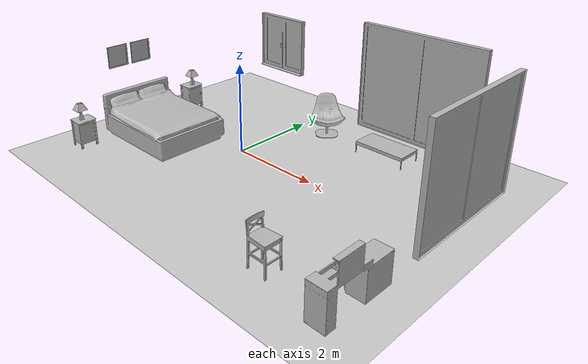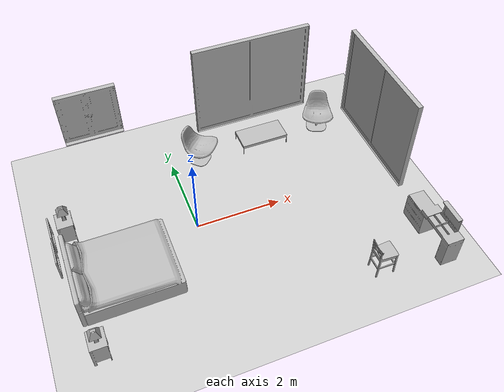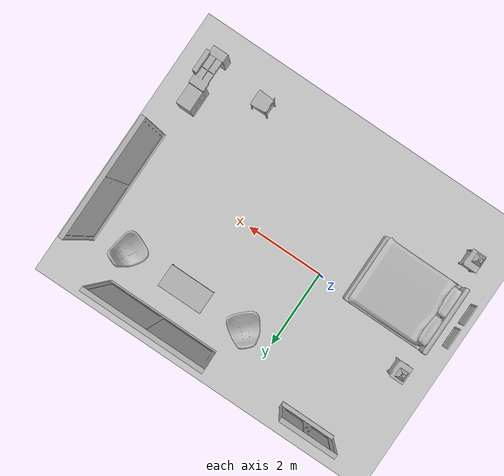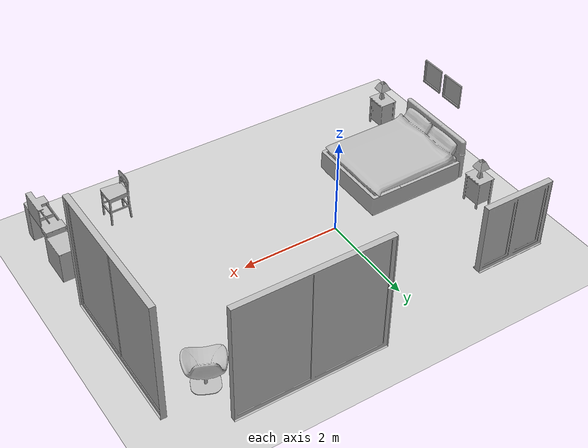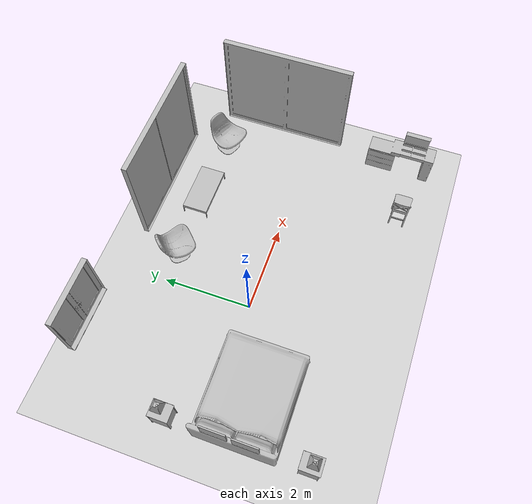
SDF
<sdf version="1.4">
 <world name="default">
  <light name="sun" type="directional">
   <pose>0 0 10 0 -0 0</pose>
   <diffuse>0.8 0.8 0.8 1</diffuse>
   <specular>0.2 0.2 0.2 1</specular>
   <attenuation>
    <range>1000</range>
    <constant>0.9</constant>
    <linear>0.01</linear>
    <quadratic>0.001</quadratic>
   </attenuation>
   <direction>-0.5 0.1 -0.9</direction>
  </light>
  <model name="ground_plane">
   <static>1</static>
   <link name="link">
    <collision name="collision">
     <geometry><plane><normal>0 0 1</normal><size>100 100</size></plane></geometry>
     <surface><friction><ode><mu>100</mu><mu2>50</mu2></ode></friction></surface>
    </collision>
    <visual name="visual">
     <cast_shadows>0</cast_shadows>
     <geometry><plane><normal>0 0 1</normal><size>100 100</size></plane></geometry>
     <material>
      <script><uri>file://media/materials/scripts/gazebo.material</uri><name>Gazebo/Grey</name></script>
     </material>
    </visual>
    <velocity_decay><linear>0</linear><angular>0</angular></velocity_decay>
   </link>
  </model>
  <physics type="ode">
   <max_step_size>0.001</max_step_size>
   <real_time_factor>1</real_time_factor>
   <real_time_update_rate>1000</real_time_update_rate>
   <gravity>0 0 -9.8</gravity>
  </physics>
  <scene><ambient>0.4 0.4 0.4 1</ambient><background>0.7 0.7 0.7 1</background><shadows>1</shadows></scene>
  <spherical_coordinates>
   <surface_model>EARTH_WGS84</surface_model>
   <latitude_deg>0</latitude_deg>
   <longitude_deg>0</longitude_deg>
   <elevation>0</elevation>
   <heading_deg>0</heading_deg>
  </spherical_coordinates>
  <model name="77_0">
   <pose>-1.84484 -0.731276 0 0 -0 0</pose>
   <static>1</static>
   <link name="link">
    <collision name="collision"><geometry><box><size>2.20332 1.81712 2</size></box></geometry></collision>
    <visual name="visual"><geometry><mesh><uri>model://77/77.dae</uri></mesh></geometry></visual>
    <velocity_decay><linear>0</linear><angular>0</angular></velocity_decay>
   </link>
  </model>
  <model name="s__999_0">
   <pose>-2.7751 0.792724 0 0 -0 0</pose>
   <static>1</static>
   <link name="link">
    <collision name="collision"><geometry><box><size>0.36 0.44 2</size></box></geometry></collision>
    <visual name="visual"><geometry><mesh><uri>model://s__999/s__999.dae</uri></mesh></geometry></visual>
    <velocity_decay><linear>0</linear><angular>0</angular></velocity_decay>
   </link>
  </model>
  <model name="s__999_1">
   <pose>-2.73282 -2.25527 0 0 -0 0</pose>
   <static>1</static>
   <link name="link">
    <collision name="collision"><geometry><box><size>0.36 0.44 2</size></box></geometry></collision>
    <visual name="visual"><geometry><mesh><uri>model://s__999/s__999.dae</uri></mesh></geometry></visual>
    <velocity_decay><linear>0</linear><angular>0</angular></velocity_decay>
   </link>
  </model>
  <model name="209_0">
   <pose>-1.58354 2.91773 0.8 0 0 -1.5708</pose>
   <static>1</static>
   <link name="link">
    <collision name="collision"><geometry><box><size>0.175 1.4 2</size></box></geometry></collision>
    <visual name="visual"><geometry><mesh><uri>model://209/209.dae</uri></mesh></geometry></visual>
    <velocity_decay><linear>0</linear><angular>0</angular></velocity_decay>
   </link>
  </model>
  <model name="753_0">
   <pose>2.48445 2.92573 0.05 0 0 -1.5708</pose>
   <static>1</static>
   <link name="link">
    <collision name="collision"><geometry><box><size>0.115 3 2</size></box></geometry></collision>
    <visual name="visual"><geometry><mesh><uri>model://753/753.dae</uri></mesh></geometry></visual>
    <velocity_decay><linear>0</linear><angular>0</angular></velocity_decay>
   </link>
  </model>
  <model name="683_0">
   <pose>-2.73518 -2.29128 0.62 0 -0 0</pose>
   <static>1</static>
   <link name="link">
    <collision name="collision"><geometry><box><size>0.238466 0.238466 2</size></box></geometry></collision>
    <visual name="visual"><geometry><mesh><uri>model://683/683.dae</uri></mesh></geometry></visual>
    <velocity_decay><linear>0</linear><angular>0</angular></velocity_decay>
   </link>
  </model>
  <model name="683_1">
   <pose>-2.75439 0.816725 0.62 0 -0 0</pose>
   <static>1</static>
   <link name="link">
    <collision name="collision"><geometry><box><size>0.238466 0.238466 2</size></box></geometry></collision>
    <visual name="visual"><geometry><mesh><uri>model://683/683.dae</uri></mesh></geometry></visual>
    <velocity_decay><linear>0</linear><angular>0</angular></velocity_decay>
   </link>
  </model>
  <model name="681_1">
   <pose>-2.98167 -0.479273 1.5 0 -0 0</pose>
   <static>1</static>
   <link name="link">
    <collision name="collision"><geometry><box><size>0.03 0.499832 2</size></box></geometry></collision>
    <visual name="visual"><geometry><mesh><uri>model://681/681.dae</uri></mesh></geometry></visual>
    <velocity_decay><linear>0</linear><angular>0</angular></velocity_decay>
   </link>
  </model>
  <model name="681_2">
   <pose>-2.99112 -1.07927 1.5 0 -0 0</pose>
   <static>1</static>
   <link name="link">
    <collision name="collision"><geometry><box><size>0.03 0.499832 2</size></box></geometry></collision>
    <visual name="visual"><geometry><mesh><uri>model://681/681.dae</uri></mesh></geometry></visual>
    <velocity_decay><linear>0</linear><angular>0</angular></velocity_decay>
   </link>
  </model>
  <model name="s__814_0">
   <pose>0.738506 2.01125 0 0 0 -0.785398</pose>
   <static>1</static>
   <link name="link">
    <collision name="collision"><geometry><box><size>0.79 0.78 2</size></box></geometry></collision>
    <visual name="visual"><geometry><mesh><uri>model://s__814/s__814.dae</uri></mesh></geometry></visual>
    <velocity_decay><linear>0</linear><angular>0</angular></velocity_decay>
   </link>
  </model>
  <model name="s__814_1">
   <pose>3.95991 2.01611 0 0 0 -1.98968</pose>
   <static>1</static>
   <link name="link">
    <collision name="collision"><geometry><box><size>0.79 0.78 2</size></box></geometry></collision>
    <visual name="visual"><geometry><mesh><uri>model://s__814/s__814.dae</uri></mesh></geometry></visual>
    <velocity_decay><linear>0</linear><angular>0</angular></velocity_decay>
   </link>
  </model>
  <model name="s__1016_0">
   <pose>2.39274 2.02873 0 0 0 -1.5708</pose>
   <static>1</static>
   <link name="link">
    <collision name="collision"><geometry><box><size>0.59 1.18 2</size></box></geometry></collision>
    <visual name="visual"><geometry><mesh><uri>model://s__1016/s__1016.dae</uri></mesh></geometry></visual>
    <velocity_decay><linear>0</linear><angular>0</angular></velocity_decay>
   </link>
  </model>
  <model name="200_0">
   <pose>4.74281 -2.18328 0 0 0 -3.14159</pose>
   <static>1</static>
   <link name="link">
    <collision name="collision"><geometry><box><size>0.401018 1.55 2</size></box></geometry></collision>
    <visual name="visual"><geometry><mesh><uri>model://200/200.dae</uri></mesh></geometry></visual>
    <velocity_decay><linear>0</linear><angular>0</angular></velocity_decay>
   </link>
  </model>
  <model name="s__424_0">
   <pose>3.31153 -2.53127 0 0 -0 0</pose>
   <static>1</static>
   <link name="link">
    <collision name="collision"><geometry><box><size>0.45 0.4 2</size></box></geometry></collision>
    <visual name="visual"><geometry><mesh><uri>model://s__424/s__424.dae</uri></mesh></geometry></visual>
    <velocity_decay><linear>0</linear><angular>0</angular></velocity_decay>
   </link>
  </model>
  <model name="753_1">
   <pose>4.89922 0.821008 0.05 0 -0 3.14159</pose>
   <static>1</static>
   <link name="link">
    <collision name="collision"><geometry><box><size>0.115 3 2</size></box></geometry></collision>
    <visual name="visual"><geometry><mesh><uri>model://753/753.dae</uri></mesh></geometry></visual>
    <velocity_decay><linear>0</linear><angular>0</angular></velocity_decay>
   </link>
  </model>
 </world>
</sdf>
